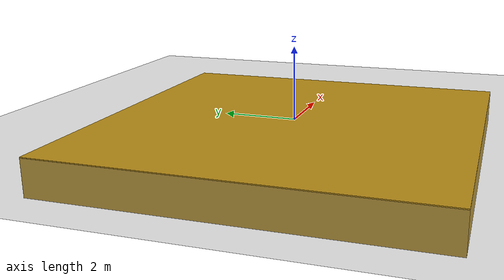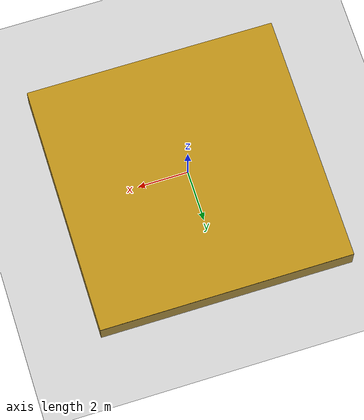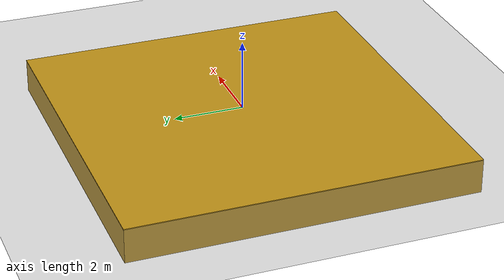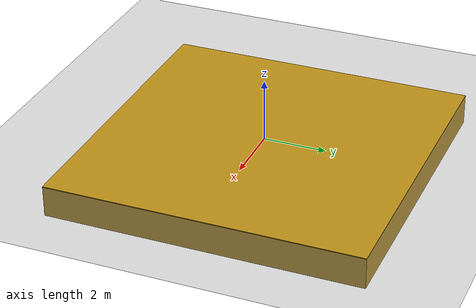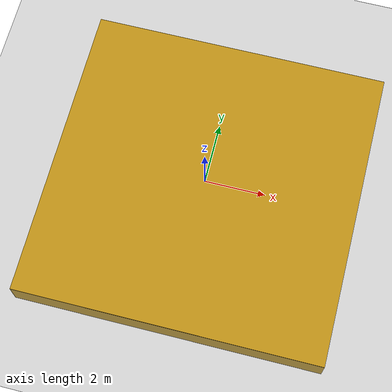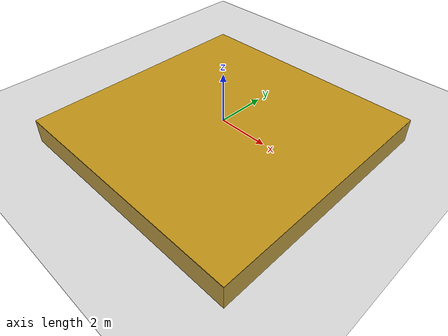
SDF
<?xml version="1.0" ?>
<sdf version="1.6">

<world name="tatami world">

<!-- Area -->
<scene>
    <ambient>0.5 0.5 0.5 1.0</ambient>
    <shadows>true</shadows>
    <origin_visual>false</origin_visual>
</scene>

<plugin name="World" filename="libWorld.so" />

<!-- iluminación básica -->
<include>
    <uri>model://sun</uri>
</include>

<!-- Area de juego -->
<include>
    <name>floor</name>
    <uri>../models/DC/floor</uri>
</include>
<include>
    <name>tatami</name>
    <pose>0 0 -0.49 0 0 0</pose>
    <uri>../models/DC/tatami</uri>
</include>

<!-- Lights -->

<!-- Own physics settings to speed up simulation -->
<physics type='ode'>

    <max_step_size>0.01</max_step_size>
    <!-- default: 0.001 segundos simulados / paso de simulación -->

    <real_time_update_rate>100</real_time_update_rate>
    <!-- default: 1000 ciclos de simulación / segundo real -->

</physics>

<!-- Interface -->
<gui fullscreen='0'>
    <camera name='user_camera'>

      <pose>10 -11 3 0 0.2 2.3</pose>

      <view_controller>orbit</view_controller>

    </camera>
</gui>

<!-- Coordinates -->

</world>
</sdf>

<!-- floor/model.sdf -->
<sdf version="1.5">

<model name="ground_plane">

<static>true</static>

<link name="link">

  <collision name="collision">

    <geometry>
      <plane>
        <normal>0 0 1</normal>
        <size>200 200</size>
      </plane>
    </geometry>

    <surface>
      <friction>
        <ode>
          <mu>100.0</mu>
          <mu2>50.0</mu2>
          <slip1>0.0</slip1>
          <slip2>0.0</slip2>
        </ode>
      </friction>
    </surface>

  </collision>

  <visual name="visual">

    <cast_shadows>true</cast_shadows>

    <geometry>
      <plane>
        <normal>0 0 1</normal>
        <size>200 200</size>
      </plane>
    </geometry>
    <material>
        <ambient>0.5 0.5 0.5 1</ambient>
        <diffuse>0.5 0.5 0.5 1</diffuse>
    </material>

  </visual>

</link>

</model>
</sdf>

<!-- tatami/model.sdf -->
<sdf version="1.7">

<model name="tatami_model">

  <static>true</static>

  <link name="link">

    <collision name="collision">

      <geometry>
        <box>
          <size>10 10 1</size>
        </box>
      </geometry>

      <surface>
        <friction>
          <ode>
            <mu>100.0</mu>
            <mu2>50.0</mu2>
            <slip1>0.0</slip1>
            <slip2>0.0</slip2>
          </ode>
        </friction>
      </surface>

    </collision>

    <visual name="visual">

      <cast_shadows>true</cast_shadows>

      <geometry>
        <box>
          <size>10 10 1</size>
        </box>
      </geometry>
      <material>
          <ambient>0.76 0.58 0.09 1</ambient>
          <diffuse>0.76 0.58 0.09 1</diffuse>
      </material>

    </visual>

  </link>

</model>
</sdf>
